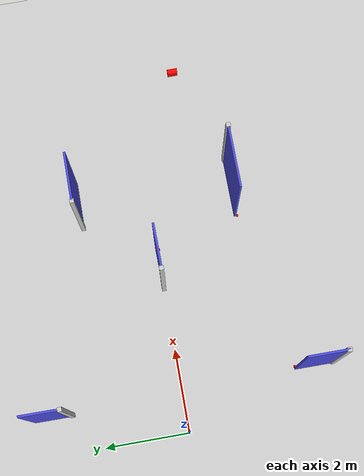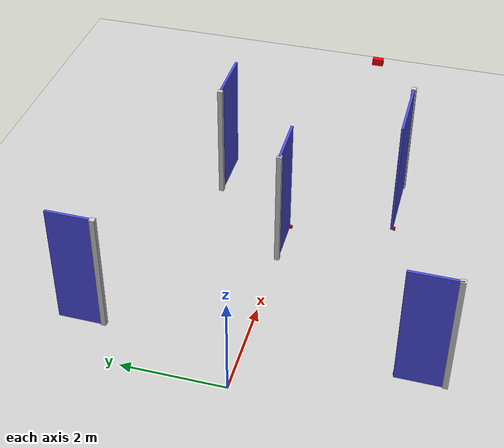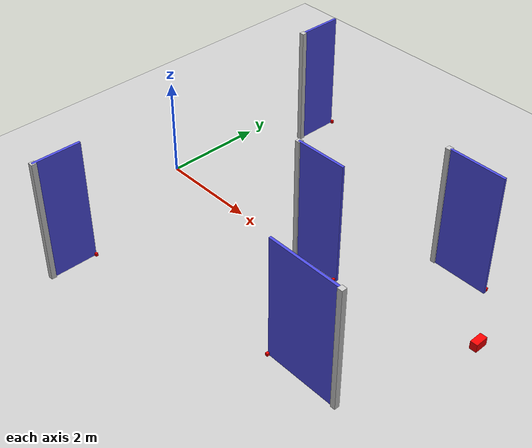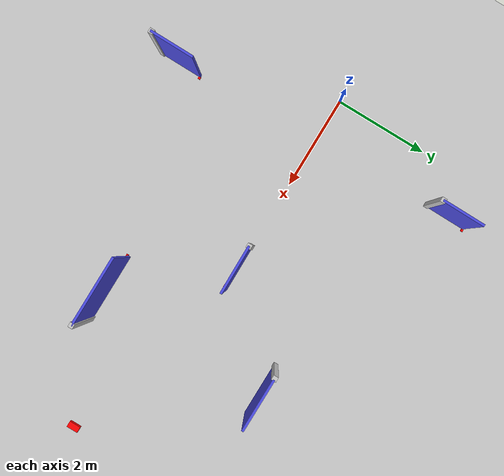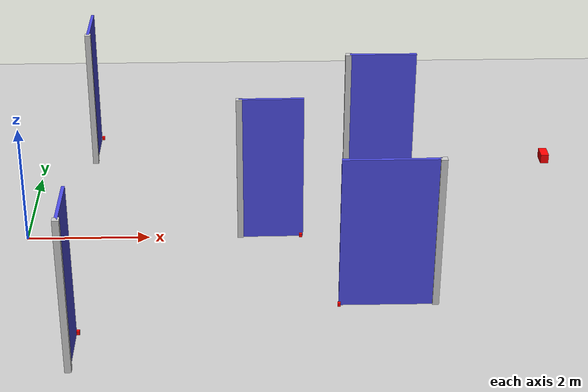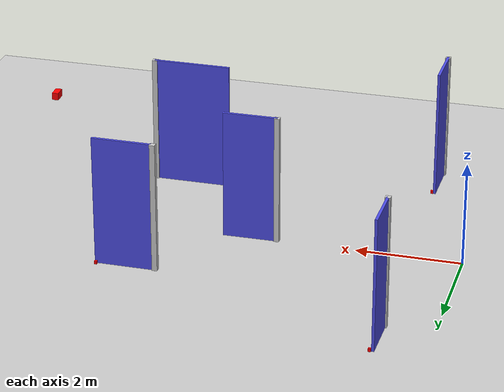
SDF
<sdf version="1.7">
 <world name="default">
  <model name="ground_plane">
   <static>1</static>
   <link name="link">
    <collision name="collision">
     <geometry><plane><normal>0 0 1</normal><size>100 100</size></plane></geometry>
     <surface><friction><ode><mu>100</mu><mu2>50</mu2></ode></friction></surface>
    </collision>
    <visual name="visual">
     <cast_shadows>0</cast_shadows>
     <geometry><plane><normal>0 0 1</normal><size>100 100</size></plane></geometry>
     <material>
      <script><uri>file://media/materials/scripts/gazebo.material</uri><name>Gazebo/Grey</name></script>
     </material>
    </visual>
   </link>
  </model>
  <model name="Lidar_2">
   <link name="link_1">
    <inertial>
     <mass>0.00014111</mass>
     <inertia><ixx>7e-08</ixx><ixy>0</ixy><ixz>0</ixz><iyy>7e-08</iyy><iyz>0</iyz><izz>6e-08</izz></inertia>
    </inertial>
    <visual name="visual">
     <geometry><box><size>0.048286 0.048861 0.059852</size></box></geometry>
     <material>
      <lighting>1</lighting>
      <script><uri>file://media/materials/scripts/gazebo.material</uri><name>Gazebo/Grey</name></script>
      <shader type="pixel"><normal_map>__default__</normal_map></shader>
      <ambient>1 0 0 1</ambient>
      <diffuse>0.7 0.7 0.7 1</diffuse>
      <specular>0.01 0.01 0.01 1</specular>
      <emissive>0 0 0 1</emissive>
     </material>
    </visual>
    <collision name="collision">
     <geometry><box><size>0.048286 0.048861 0.059852</size></box></geometry>
     <surface>
      <friction>
       <ode><mu>1</mu><mu2>1</mu2><fdir1>0 0 0</fdir1><slip1>0</slip1><slip2>0</slip2></ode>
       <torsional>
        <coefficient>1</coefficient>
        <patch_radius>0</patch_radius>
        <surface_radius>0</surface_radius>
        <use_patch_radius>1</use_patch_radius>
        <ode><slip>0</slip></ode>
       </torsional>
      </friction>
      <bounce><restitution_coefficient>0</restitution_coefficient><threshold>1e+06</threshold></bounce>
      <contact>
       <collide_without_contact>0</collide_without_contact>
       <collide_without_contact_bitmask>1</collide_without_contact_bitmask>
       <collide_bitmask>1</collide_bitmask>
       <ode>
        <soft_cfm>0</soft_cfm>
        <soft_erp>0.2</soft_erp>
        <kp>1e+13</kp>
        <kd>1</kd>
        <max_vel>0.01</max_vel>
        <min_depth>0</min_depth>
       </ode>
       <bullet>
        <split_impulse>1</split_impulse>
        <split_impulse_penetration_threshold>-0.01</split_impulse_penetration_threshold>
        <soft_cfm>0</soft_cfm>
        <soft_erp>0.2</soft_erp>
        <kp>1e+13</kp>
        <kd>1</kd>
       </bullet>
      </contact>
     </surface>
    </collision>
   </link>
   <static>0</static>
   <pose>1.09766 -2.73405 0.029921 -8.9e-05 0.00011 -1.56426</pose>
  </model>
  <model name="Lidar_3">
   <link name="link_1">
    <inertial>
     <mass>0.00014111</mass>
     <inertia><ixx>7e-08</ixx><ixy>0</ixy><ixz>0</ixz><iyy>7e-08</iyy><iyz>0</iyz><izz>6e-08</izz></inertia>
    </inertial>
    <visual name="visual">
     <geometry><box><size>0.048286 0.048861 0.059852</size></box></geometry>
     <material>
      <lighting>1</lighting>
      <script><uri>file://media/materials/scripts/gazebo.material</uri><name>Gazebo/Grey</name></script>
      <shader type="pixel"><normal_map>__default__</normal_map></shader>
      <ambient>1 0 0 1</ambient>
      <diffuse>0.7 0.7 0.7 1</diffuse>
      <specular>0.01 0.01 0.01 1</specular>
      <emissive>0 0 0 1</emissive>
     </material>
    </visual>
    <collision name="collision">
     <geometry><box><size>0.048286 0.048861 0.059852</size></box></geometry>
     <surface>
      <friction>
       <ode><mu>1</mu><mu2>1</mu2><fdir1>0 0 0</fdir1><slip1>0</slip1><slip2>0</slip2></ode>
       <torsional>
        <coefficient>1</coefficient>
        <patch_radius>0</patch_radius>
        <surface_radius>0</surface_radius>
        <use_patch_radius>1</use_patch_radius>
        <ode><slip>0</slip></ode>
       </torsional>
      </friction>
      <bounce><restitution_coefficient>0</restitution_coefficient><threshold>1e+06</threshold></bounce>
      <contact>
       <collide_without_contact>0</collide_without_contact>
       <collide_without_contact_bitmask>1</collide_without_contact_bitmask>
       <collide_bitmask>1</collide_bitmask>
       <ode>
        <soft_cfm>0</soft_cfm>
        <soft_erp>0.2</soft_erp>
        <kp>1e+13</kp>
        <kd>1</kd>
        <max_vel>0.01</max_vel>
        <min_depth>0</min_depth>
       </ode>
       <bullet>
        <split_impulse>1</split_impulse>
        <split_impulse_penetration_threshold>-0.01</split_impulse_penetration_threshold>
        <soft_cfm>0</soft_cfm>
        <soft_erp>0.2</soft_erp>
        <kp>1e+13</kp>
        <kd>1</kd>
       </bullet>
      </contact>
     </surface>
    </collision>
   </link>
   <static>0</static>
   <pose>4.48921 -0.039747 0.029921 -8.9e-05 -0.00011 3.12329</pose>
  </model>
  <model name="Lidar_4">
   <link name="link_1">
    <inertial>
     <mass>0.00014111</mass>
     <inertia><ixx>7e-08</ixx><ixy>0</ixy><ixz>0</ixz><iyy>7e-08</iyy><iyz>0</iyz><izz>6e-08</izz></inertia>
    </inertial>
    <visual name="visual">
     <geometry><box><size>0.048286 0.048861 0.059852</size></box></geometry>
     <material>
      <lighting>1</lighting>
      <script><uri>file://media/materials/scripts/gazebo.material</uri><name>Gazebo/Grey</name></script>
      <shader type="pixel"><normal_map>__default__</normal_map></shader>
      <ambient>1 0 0 1</ambient>
      <diffuse>0.7 0.7 0.7 1</diffuse>
      <specular>0.01 0.01 0.01 1</specular>
      <emissive>0 0 0 1</emissive>
     </material>
    </visual>
    <collision name="collision">
     <geometry><box><size>0.048286 0.048861 0.059852</size></box></geometry>
     <surface>
      <friction>
       <ode><mu>1</mu><mu2>1</mu2><fdir1>0 0 0</fdir1><slip1>0</slip1><slip2>0</slip2></ode>
       <torsional>
        <coefficient>1</coefficient>
        <patch_radius>0</patch_radius>
        <surface_radius>0</surface_radius>
        <use_patch_radius>1</use_patch_radius>
        <ode><slip>0</slip></ode>
       </torsional>
      </friction>
      <bounce><restitution_coefficient>0</restitution_coefficient><threshold>1e+06</threshold></bounce>
      <contact>
       <collide_without_contact>0</collide_without_contact>
       <collide_without_contact_bitmask>1</collide_without_contact_bitmask>
       <collide_bitmask>1</collide_bitmask>
       <ode>
        <soft_cfm>0</soft_cfm>
        <soft_erp>0.2</soft_erp>
        <kp>1e+13</kp>
        <kd>1</kd>
        <max_vel>0.01</max_vel>
        <min_depth>0</min_depth>
       </ode>
       <bullet>
        <split_impulse>1</split_impulse>
        <split_impulse_penetration_threshold>-0.01</split_impulse_penetration_threshold>
        <soft_cfm>0</soft_cfm>
        <soft_erp>0.2</soft_erp>
        <kp>1e+13</kp>
        <kd>1</kd>
       </bullet>
      </contact>
     </surface>
    </collision>
   </link>
   <static>0</static>
   <pose>6.45492 1.75537 0.029924 0.000139 5.8e-05 3.13776</pose>
  </model>
  <model name="Lidar_5">
   <link name="link_1">
    <inertial>
     <mass>0.00014111</mass>
     <inertia><ixx>7e-08</ixx><ixy>0</ixy><ixz>0</ixz><iyy>7e-08</iyy><iyz>0</iyz><izz>6e-08</izz></inertia>
    </inertial>
    <visual name="visual">
     <geometry><box><size>0.048286 0.048861 0.059852</size></box></geometry>
     <material>
      <lighting>1</lighting>
      <script><uri>file://media/materials/scripts/gazebo.material</uri><name>Gazebo/Grey</name></script>
      <shader type="pixel"><normal_map>__default__</normal_map></shader>
      <ambient>1 0 0 1</ambient>
      <diffuse>0.7 0.7 0.7 1</diffuse>
      <specular>0.01 0.01 0.01 1</specular>
      <emissive>0 0 0 1</emissive>
     </material>
    </visual>
    <collision name="collision">
     <geometry><box><size>0.048286 0.048861 0.059852</size></box></geometry>
     <surface>
      <friction>
       <ode><mu>1</mu><mu2>1</mu2><fdir1>0 0 0</fdir1><slip1>0</slip1><slip2>0</slip2></ode>
       <torsional>
        <coefficient>1</coefficient>
        <patch_radius>0</patch_radius>
        <surface_radius>0</surface_radius>
        <use_patch_radius>1</use_patch_radius>
        <ode><slip>0</slip></ode>
       </torsional>
      </friction>
      <bounce><restitution_coefficient>0</restitution_coefficient><threshold>1e+06</threshold></bounce>
      <contact>
       <collide_without_contact>0</collide_without_contact>
       <collide_without_contact_bitmask>1</collide_without_contact_bitmask>
       <collide_bitmask>1</collide_bitmask>
       <ode>
        <soft_cfm>0</soft_cfm>
        <soft_erp>0.2</soft_erp>
        <kp>1e+13</kp>
        <kd>1</kd>
        <max_vel>0.01</max_vel>
        <min_depth>0</min_depth>
       </ode>
       <bullet>
        <split_impulse>1</split_impulse>
        <split_impulse_penetration_threshold>-0.01</split_impulse_penetration_threshold>
        <soft_cfm>0</soft_cfm>
        <soft_erp>0.2</soft_erp>
        <kp>1e+13</kp>
        <kd>1</kd>
       </bullet>
      </contact>
     </surface>
    </collision>
   </link>
   <static>0</static>
   <pose>0.955702 3.52749 0.029924 -6.1e-05 0.000135 -1.57626</pose>
  </model>
  <model name="Lidar_7">
   <link name="link_1">
    <inertial>
     <mass>0.00014111</mass>
     <inertia><ixx>7e-08</ixx><ixy>0</ixy><ixz>0</ixz><iyy>7e-08</iyy><iyz>0</iyz><izz>6e-08</izz></inertia>
    </inertial>
    <visual name="visual">
     <geometry><box><size>0.048286 0.048861 0.059852</size></box></geometry>
     <material>
      <lighting>1</lighting>
      <script><uri>file://media/materials/scripts/gazebo.material</uri><name>Gazebo/Grey</name></script>
      <shader type="pixel"><normal_map>__default__</normal_map></shader>
      <ambient>1 0 0 1</ambient>
      <diffuse>0.7 0.7 0.7 1</diffuse>
      <specular>0.01 0.01 0.01 1</specular>
      <emissive>0 0 0 1</emissive>
     </material>
    </visual>
    <collision name="collision">
     <geometry><box><size>0.048286 0.048861 0.059852</size></box></geometry>
     <surface>
      <friction>
       <ode><mu>1</mu><mu2>1</mu2><fdir1>0 0 0</fdir1><slip1>0</slip1><slip2>0</slip2></ode>
       <torsional>
        <coefficient>1</coefficient>
        <patch_radius>0</patch_radius>
        <surface_radius>0</surface_radius>
        <use_patch_radius>1</use_patch_radius>
        <ode><slip>0</slip></ode>
       </torsional>
      </friction>
      <bounce><restitution_coefficient>0</restitution_coefficient><threshold>1e+06</threshold></bounce>
      <contact>
       <collide_without_contact>0</collide_without_contact>
       <collide_without_contact_bitmask>1</collide_without_contact_bitmask>
       <collide_bitmask>1</collide_bitmask>
       <ode>
        <soft_cfm>0</soft_cfm>
        <soft_erp>0.2</soft_erp>
        <kp>1e+13</kp>
        <kd>1</kd>
        <max_vel>0.01</max_vel>
        <min_depth>0</min_depth>
       </ode>
       <bullet>
        <split_impulse>1</split_impulse>
        <split_impulse_penetration_threshold>-0.01</split_impulse_penetration_threshold>
        <soft_cfm>0</soft_cfm>
        <soft_erp>0.2</soft_erp>
        <kp>1e+13</kp>
        <kd>1</kd>
       </bullet>
      </contact>
     </surface>
    </collision>
   </link>
   <static>0</static>
   <pose>4.99611 -2.08544 0.029924 6.1e-05 0.000135 -0.001713</pose>
  </model>
  <model name="Camera_1">
   <link name="link_1">
    <inertial>
     <mass>0.00014152</mass>
     <inertia><ixx>8.3e-07</ixx><ixy>0</ixy><ixz>0</ixz><iyy>4e-07</iyy><iyz>0</iyz><izz>7.7e-07</izz></inertia>
    </inertial>
    <gravity>0</gravity>
    <visual name="visual">
     <geometry><box><size>0.119276 0.225925 0.14044</size></box></geometry>
     <material>
      <lighting>1</lighting>
      <script><uri>file://media/materials/scripts/gazebo.material</uri><name>Gazebo/Grey</name></script>
      <shader type="pixel"><normal_map>__default__</normal_map></shader>
      <ambient>1 0 0 1</ambient>
      <diffuse>0.7 0.7 0.7 1</diffuse>
      <specular>0.01 0.01 0.01 1</specular>
      <emissive>0 0 0 1</emissive>
     </material>
    </visual>
    <collision name="collision">
     <geometry><box><size>0.119276 0.225925 0.14044</size></box></geometry>
     <surface>
      <friction>
       <ode><mu>1</mu><mu2>1</mu2><fdir1>0 0 0</fdir1><slip1>0</slip1><slip2>0</slip2></ode>
       <torsional>
        <coefficient>1</coefficient>
        <patch_radius>0</patch_radius>
        <surface_radius>0</surface_radius>
        <use_patch_radius>1</use_patch_radius>
        <ode><slip>0</slip></ode>
       </torsional>
      </friction>
      <bounce><restitution_coefficient>0</restitution_coefficient><threshold>1e+06</threshold></bounce>
      <contact>
       <collide_without_contact>0</collide_without_contact>
       <collide_without_contact_bitmask>1</collide_without_contact_bitmask>
       <collide_bitmask>1</collide_bitmask>
       <ode>
        <soft_cfm>0</soft_cfm>
        <soft_erp>0.2</soft_erp>
        <kp>1e+13</kp>
        <kd>1</kd>
        <max_vel>0.01</max_vel>
        <min_depth>0</min_depth>
       </ode>
       <bullet>
        <split_impulse>1</split_impulse>
        <split_impulse_penetration_threshold>-0.01</split_impulse_penetration_threshold>
        <soft_cfm>0</soft_cfm>
        <soft_erp>0.2</soft_erp>
        <kp>1e+13</kp>
        <kd>1</kd>
       </bullet>
      </contact>
     </surface>
    </collision>
    <sensor name="camera_sensor1" type="camera">
     <update_rate>30</update_rate>
     <camera>
      <horizontal_fov>2.5</horizontal_fov>
      <image><width>800</width><height>600</height><format>R8G8B8</format></image>
      <clip><near>0.1</near><far>100</far></clip>
      <distortion><k1>-0.3</k1><k2>0.1</k2><p1>0</p1><p2>0</p2></distortion>
     </camera>
     <plugin name="camera_plugin" filename="libcamera_plugin.so"/>
    </sensor>
   </link>
   <static>0</static>
   <pose>8.13503 -1.04662 2 0 0 -3.14</pose>
  </model>
  <model name="door_4">
   <link name="door_frame">
    <pose>0.25 -0 1.25 0 -0 0</pose>
    <kinematic>1</kinematic>
    <inertial>
     <inertia><ixx>1</ixx><ixy>0</ixy><ixz>0</ixz><iyy>1</iyy><iyz>0</iyz><izz>1</izz></inertia>
     <mass>1</mass>
    </inertial>
    <visual name="frame_visual">
     <geometry><box><size>0.1 0.1 2.5</size></box></geometry>
     <material>
      <ambient>0.7 0.7 0.7 1</ambient>
      <diffuse>0.8 0.8 0.8 1</diffuse>
      <shader type="pixel"/>
      <script><name>ModelPreview_1::door_frame::frame_visual_MATERIAL_</name><uri>__default__</uri></script>
     </material>
    </visual>
    <collision name="frame_collision">
     <geometry><box><size>0.1 0.1 2.5</size></box></geometry>
     <surface>
      <friction>
       <ode><mu>1</mu><mu2>1</mu2><fdir1>0 0 0</fdir1><slip1>0</slip1><slip2>0</slip2></ode>
       <torsional>
        <coefficient>1</coefficient>
        <patch_radius>0</patch_radius>
        <surface_radius>0</surface_radius>
        <use_patch_radius>1</use_patch_radius>
        <ode><slip>0</slip></ode>
       </torsional>
      </friction>
      <bounce><restitution_coefficient>0</restitution_coefficient><threshold>1e+06</threshold></bounce>
      <contact>
       <collide_without_contact>0</collide_without_contact>
       <collide_without_contact_bitmask>1</collide_without_contact_bitmask>
       <collide_bitmask>1</collide_bitmask>
       <ode>
        <soft_cfm>0</soft_cfm>
        <soft_erp>0.2</soft_erp>
        <kp>1e+13</kp>
        <kd>1</kd>
        <max_vel>0.01</max_vel>
        <min_depth>0</min_depth>
       </ode>
       <bullet>
        <split_impulse>1</split_impulse>
        <split_impulse_penetration_threshold>-0.01</split_impulse_penetration_threshold>
        <soft_cfm>0</soft_cfm>
        <soft_erp>0.2</soft_erp>
        <kp>1e+13</kp>
        <kd>1</kd>
       </bullet>
      </contact>
     </surface>
    </collision>
   </link>
   <link name="door">
    <kinematic>1</kinematic>
    <pose>-0.195697 -0 1.25 0 -0 0</pose>
    <inertial>
     <inertia>
      <ixx>0.971443</ixx>
      <ixy>0</ixy>
      <ixz>0</ixz>
      <iyy>1.10607</iyy>
      <iyz>0</iyz>
      <izz>0.135403</izz>
     </inertia>
     <mass>1.86443</mass>
    </inertial>
    <visual name="door_visual">
     <geometry><box><size>0.932199 0.05 2.5</size></box></geometry>
     <material>
      <ambient>0.2 0.2 0.8 1</ambient>
      <diffuse>0.3 0.3 0.9 1</diffuse>
      <shader type="pixel"/>
      <script><name>ModelPreview_1::door::door_visual_MATERIAL_</name><uri>__default__</uri></script>
     </material>
    </visual>
    <collision name="door_collision">
     <geometry><box><size>0.932199 0.05 2.5</size></box></geometry>
     <surface>
      <friction>
       <ode><mu>1</mu><mu2>1</mu2><fdir1>0 0 0</fdir1><slip1>0</slip1><slip2>0</slip2></ode>
       <torsional>
        <coefficient>1</coefficient>
        <patch_radius>0</patch_radius>
        <surface_radius>0</surface_radius>
        <use_patch_radius>1</use_patch_radius>
        <ode><slip>0</slip></ode>
       </torsional>
      </friction>
      <bounce><restitution_coefficient>0</restitution_coefficient><threshold>1e+06</threshold></bounce>
      <contact>
       <collide_without_contact>0</collide_without_contact>
       <collide_without_contact_bitmask>1</collide_without_contact_bitmask>
       <collide_bitmask>1</collide_bitmask>
       <ode>
        <soft_cfm>0</soft_cfm>
        <soft_erp>0.2</soft_erp>
        <kp>1e+13</kp>
        <kd>1</kd>
        <max_vel>0.01</max_vel>
        <min_depth>0</min_depth>
       </ode>
       <bullet>
        <split_impulse>1</split_impulse>
        <split_impulse_penetration_threshold>-0.01</split_impulse_penetration_threshold>
        <soft_cfm>0</soft_cfm>
        <soft_erp>0.2</soft_erp>
        <kp>1e+13</kp>
        <kd>1</kd>
       </bullet>
      </contact>
     </surface>
    </collision>
   </link>
   <joint name="door_joint" type="prismatic">
    <parent>door_frame</parent>
    <child>door</child>
    <axis>
     <xyz>1 0 0</xyz>
     <limit><lower>0</lower><upper>1</upper><effort>-1</effort><velocity>-1</velocity></limit>
     <dynamics>
      <spring_reference>0</spring_reference>
      <spring_stiffness>0</spring_stiffness>
      <damping>0</damping>
      <friction>0</friction>
     </dynamics>
    </axis>
    <physics>
     <ode><limit><cfm>0</cfm><erp>0.2</erp></limit><suspension><cfm>0</cfm><erp>0.2</erp></suspension></ode>
    </physics>
   </joint>
   <static>0</static>
   <plugin name="door_control_plugin" filename="libdoor_control_plugin.so">
    <door_joint>door_joint</door_joint>
    <speed>1.0</speed>
    <open_target>1.0</open_target>
    <close_target>0.0</close_target>
   </plugin>
   <pose>1.04541 -3.38243 0 0 0 -1.57622</pose>
  </model>
  <model name="door_5">
   <link name="door_frame">
    <pose>0.25 0 1.25 0 -0 0</pose>
    <kinematic>1</kinematic>
    <inertial>
     <inertia><ixx>1</ixx><ixy>0</ixy><ixz>0</ixz><iyy>1</iyy><iyz>0</iyz><izz>1</izz></inertia>
     <mass>1</mass>
    </inertial>
    <visual name="frame_visual">
     <geometry><box><size>0.1 0.1 2.5</size></box></geometry>
     <material>
      <ambient>0.7 0.7 0.7 1</ambient>
      <diffuse>0.8 0.8 0.8 1</diffuse>
      <shader type="pixel"/>
      <script><name>ModelPreview_1::door_frame::frame_visual_MATERIAL_</name><uri>__default__</uri></script>
     </material>
    </visual>
    <collision name="frame_collision">
     <geometry><box><size>0.1 0.1 2.5</size></box></geometry>
     <surface>
      <friction>
       <ode><mu>1</mu><mu2>1</mu2><fdir1>0 0 0</fdir1><slip1>0</slip1><slip2>0</slip2></ode>
       <torsional>
        <coefficient>1</coefficient>
        <patch_radius>0</patch_radius>
        <surface_radius>0</surface_radius>
        <use_patch_radius>1</use_patch_radius>
        <ode><slip>0</slip></ode>
       </torsional>
      </friction>
      <bounce><restitution_coefficient>0</restitution_coefficient><threshold>1e+06</threshold></bounce>
      <contact>
       <collide_without_contact>0</collide_without_contact>
       <collide_without_contact_bitmask>1</collide_without_contact_bitmask>
       <collide_bitmask>1</collide_bitmask>
       <ode>
        <soft_cfm>0</soft_cfm>
        <soft_erp>0.2</soft_erp>
        <kp>1e+13</kp>
        <kd>1</kd>
        <max_vel>0.01</max_vel>
        <min_depth>0</min_depth>
       </ode>
       <bullet>
        <split_impulse>1</split_impulse>
        <split_impulse_penetration_threshold>-0.01</split_impulse_penetration_threshold>
        <soft_cfm>0</soft_cfm>
        <soft_erp>0.2</soft_erp>
        <kp>1e+13</kp>
        <kd>1</kd>
       </bullet>
      </contact>
     </surface>
    </collision>
   </link>
   <link name="door">
    <kinematic>1</kinematic>
    <pose>-0.486434 0 1.25 0 -0 0</pose>
    <inertial>
     <inertia><ixx>1.55156</ixx><ixy>0</ixy><ixz>0</ixz><iyy>2.10104</iyy><iyz>0</iyz><izz>0.550719</izz></inertia>
     <mass>2.9778</mass>
    </inertial>
    <visual name="door_visual">
     <geometry><box><size>1.48889 0.05 2.5</size></box></geometry>
     <material>
      <ambient>0.2 0.2 0.8 1</ambient>
      <diffuse>0.3 0.3 0.9 1</diffuse>
      <shader type="pixel"/>
      <script><name>ModelPreview_1::door::door_visual_MATERIAL_</name><uri>__default__</uri></script>
     </material>
    </visual>
    <collision name="door_collision">
     <geometry><box><size>1.48889 0.05 2.5</size></box></geometry>
     <surface>
      <friction>
       <ode><mu>1</mu><mu2>1</mu2><fdir1>0 0 0</fdir1><slip1>0</slip1><slip2>0</slip2></ode>
       <torsional>
        <coefficient>1</coefficient>
        <patch_radius>0</patch_radius>
        <surface_radius>0</surface_radius>
        <use_patch_radius>1</use_patch_radius>
        <ode><slip>0</slip></ode>
       </torsional>
      </friction>
      <bounce><restitution_coefficient>0</restitution_coefficient><threshold>1e+06</threshold></bounce>
      <contact>
       <collide_without_contact>0</collide_without_contact>
       <collide_without_contact_bitmask>1</collide_without_contact_bitmask>
       <collide_bitmask>1</collide_bitmask>
       <ode>
        <soft_cfm>0</soft_cfm>
        <soft_erp>0.2</soft_erp>
        <kp>1e+13</kp>
        <kd>1</kd>
        <max_vel>0.01</max_vel>
        <min_depth>0</min_depth>
       </ode>
       <bullet>
        <split_impulse>1</split_impulse>
        <split_impulse_penetration_threshold>-0.01</split_impulse_penetration_threshold>
        <soft_cfm>0</soft_cfm>
        <soft_erp>0.2</soft_erp>
        <kp>1e+13</kp>
        <kd>1</kd>
       </bullet>
      </contact>
     </surface>
    </collision>
   </link>
   <joint name="door_joint" type="prismatic">
    <parent>door_frame</parent>
    <child>door</child>
    <axis>
     <xyz>1 0 0</xyz>
     <limit><lower>0</lower><upper>2</upper><effort>-1</effort><velocity>-1</velocity></limit>
     <dynamics>
      <spring_reference>0</spring_reference>
      <spring_stiffness>0</spring_stiffness>
      <damping>0</damping>
      <friction>0</friction>
     </dynamics>
    </axis>
    <physics>
     <ode><limit><cfm>0</cfm><erp>0.2</erp></limit><suspension><cfm>0</cfm><erp>0.2</erp></suspension></ode>
    </physics>
   </joint>
   <static>0</static>
   <plugin name="door_control_plugin" filename="libdoor_control_plugin.so">
    <door_joint>door_joint</door_joint>
    <speed>1.0</speed>
    <open_target>1.5</open_target>
    <close_target>0.0</close_target>
   </plugin>
   <pose>6.22032 -2.03543 0 0 -0 0</pose>
  </model>
  <model name="door_6">
   <link name="door_frame">
    <pose>0.25 0 1.25 0 -0 0</pose>
    <kinematic>1</kinematic>
    <inertial>
     <inertia><ixx>1</ixx><ixy>0</ixy><ixz>0</ixz><iyy>1</iyy><iyz>0</iyz><izz>1</izz></inertia>
     <mass>1</mass>
    </inertial>
    <visual name="frame_visual">
     <geometry><box><size>0.1 0.1 2.5</size></box></geometry>
     <material>
      <ambient>0.7 0.7 0.7 1</ambient>
      <diffuse>0.8 0.8 0.8 1</diffuse>
      <shader type="pixel"/>
      <script><name>ModelPreview_1::door_frame::frame_visual_MATERIAL_</name><uri>__default__</uri></script>
     </material>
    </visual>
    <collision name="frame_collision">
     <geometry><box><size>0.1 0.1 2.5</size></box></geometry>
     <surface>
      <friction>
       <ode><mu>1</mu><mu2>1</mu2><fdir1>0 0 0</fdir1><slip1>0</slip1><slip2>0</slip2></ode>
       <torsional>
        <coefficient>1</coefficient>
        <patch_radius>0</patch_radius>
        <surface_radius>0</surface_radius>
        <use_patch_radius>1</use_patch_radius>
        <ode><slip>0</slip></ode>
       </torsional>
      </friction>
      <bounce><restitution_coefficient>0</restitution_coefficient><threshold>1e+06</threshold></bounce>
      <contact>
       <collide_without_contact>0</collide_without_contact>
       <collide_without_contact_bitmask>1</collide_without_contact_bitmask>
       <collide_bitmask>1</collide_bitmask>
       <ode>
        <soft_cfm>0</soft_cfm>
        <soft_erp>0.2</soft_erp>
        <kp>1e+13</kp>
        <kd>1</kd>
        <max_vel>0.01</max_vel>
        <min_depth>0</min_depth>
       </ode>
       <bullet>
        <split_impulse>1</split_impulse>
        <split_impulse_penetration_threshold>-0.01</split_impulse_penetration_threshold>
        <soft_cfm>0</soft_cfm>
        <soft_erp>0.2</soft_erp>
        <kp>1e+13</kp>
        <kd>1</kd>
       </bullet>
      </contact>
     </surface>
    </collision>
   </link>
   <link name="door">
    <kinematic>1</kinematic>
    <pose>-0.259339 0 1.25 0 -0 0</pose>
    <inertial>
     <inertia><ixx>1.07451</ixx><ixy>0</ixy><ixz>0</ixz><iyy>1.25679</iyy><iyz>0</iyz><izz>0.18314</izz></inertia>
     <mass>2.06224</mass>
    </inertial>
    <visual name="door_visual">
     <geometry><box><size>1.0311 0.05 2.5</size></box></geometry>
     <material>
      <ambient>0.2 0.2 0.8 1</ambient>
      <diffuse>0.3 0.3 0.9 1</diffuse>
      <shader type="pixel"/>
      <script><name>ModelPreview_1::door::door_visual_MATERIAL_</name><uri>__default__</uri></script>
     </material>
    </visual>
    <collision name="door_collision">
     <geometry><box><size>1.0311 0.05 2.5</size></box></geometry>
     <surface>
      <friction>
       <ode><mu>1</mu><mu2>1</mu2><fdir1>0 0 0</fdir1><slip1>0</slip1><slip2>0</slip2></ode>
       <torsional>
        <coefficient>1</coefficient>
        <patch_radius>0</patch_radius>
        <surface_radius>0</surface_radius>
        <use_patch_radius>1</use_patch_radius>
        <ode><slip>0</slip></ode>
       </torsional>
      </friction>
      <bounce><restitution_coefficient>0</restitution_coefficient><threshold>1e+06</threshold></bounce>
      <contact>
       <collide_without_contact>0</collide_without_contact>
       <collide_without_contact_bitmask>1</collide_without_contact_bitmask>
       <collide_bitmask>1</collide_bitmask>
       <ode>
        <soft_cfm>0</soft_cfm>
        <soft_erp>0.2</soft_erp>
        <kp>1e+13</kp>
        <kd>1</kd>
        <max_vel>0.01</max_vel>
        <min_depth>0</min_depth>
       </ode>
       <bullet>
        <split_impulse>1</split_impulse>
        <split_impulse_penetration_threshold>-0.01</split_impulse_penetration_threshold>
        <soft_cfm>0</soft_cfm>
        <soft_erp>0.2</soft_erp>
        <kp>1e+13</kp>
        <kd>1</kd>
       </bullet>
      </contact>
     </surface>
    </collision>
   </link>
   <joint name="door_joint" type="prismatic">
    <parent>door_frame</parent>
    <child>door</child>
    <axis>
     <xyz>1 0 0</xyz>
     <limit><lower>0</lower><upper>1</upper><effort>-1</effort><velocity>-1</velocity></limit>
     <dynamics>
      <spring_reference>0</spring_reference>
      <spring_stiffness>0</spring_stiffness>
      <damping>0</damping>
      <friction>0</friction>
     </dynamics>
    </axis>
    <physics>
     <ode><limit><cfm>0</cfm><erp>0.2</erp></limit><suspension><cfm>0</cfm><erp>0.2</erp></suspension></ode>
    </physics>
   </joint>
   <static>0</static>
   <plugin name="door_control_plugin" filename="libdoor_control_plugin.so">
    <door_joint>door_joint</door_joint>
    <speed>1.</speed>
    <open_target>1</open_target>
    <close_target>0.0</close_target>
   </plugin>
   <pose>3.75281 0.00756 -0 0 0 -3.13224</pose>
  </model>
  <model name="door_8">
   <link name="door_frame">
    <pose>0.25 -0 1.25 0 -0 0</pose>
    <kinematic>1</kinematic>
    <inertial>
     <inertia><ixx>1</ixx><ixy>0</ixy><ixz>0</ixz><iyy>1</iyy><iyz>0</iyz><izz>1</izz></inertia>
     <mass>1</mass>
    </inertial>
    <visual name="frame_visual">
     <geometry><box><size>0.1 0.1 2.5</size></box></geometry>
     <material>
      <ambient>0.7 0.7 0.7 1</ambient>
      <diffuse>0.8 0.8 0.8 1</diffuse>
      <shader type="pixel"/>
      <script><name>ModelPreview_1::door_frame::frame_visual_MATERIAL_</name><uri>__default__</uri></script>
     </material>
    </visual>
    <collision name="frame_collision">
     <geometry><box><size>0.1 0.1 2.5</size></box></geometry>
     <surface>
      <friction>
       <ode><mu>1</mu><mu2>1</mu2><fdir1>0 0 0</fdir1><slip1>0</slip1><slip2>0</slip2></ode>
       <torsional>
        <coefficient>1</coefficient>
        <patch_radius>0</patch_radius>
        <surface_radius>0</surface_radius>
        <use_patch_radius>1</use_patch_radius>
        <ode><slip>0</slip></ode>
       </torsional>
      </friction>
      <bounce><restitution_coefficient>0</restitution_coefficient><threshold>1e+06</threshold></bounce>
      <contact>
       <collide_without_contact>0</collide_without_contact>
       <collide_without_contact_bitmask>1</collide_without_contact_bitmask>
       <collide_bitmask>1</collide_bitmask>
       <ode>
        <soft_cfm>0</soft_cfm>
        <soft_erp>0.2</soft_erp>
        <kp>1e+13</kp>
        <kd>1</kd>
        <max_vel>0.01</max_vel>
        <min_depth>0</min_depth>
       </ode>
       <bullet>
        <split_impulse>1</split_impulse>
        <split_impulse_penetration_threshold>-0.01</split_impulse_penetration_threshold>
        <soft_cfm>0</soft_cfm>
        <soft_erp>0.2</soft_erp>
        <kp>1e+13</kp>
        <kd>1</kd>
       </bullet>
      </contact>
     </surface>
    </collision>
   </link>
   <link name="door">
    <kinematic>1</kinematic>
    <pose>-0.336184 -0 1.25 0 -0 0</pose>
    <inertial>
     <inertia><ixx>1.16202</ixx><ixy>0</ixy><ixz>0</ixz><iyy>1.39265</iyy><iyz>0</iyz><izz>0.231556</izz></inertia>
     <mass>2.23019</mass>
    </inertial>
    <visual name="door_visual">
     <geometry><box><size>1.11509 0.05 2.5</size></box></geometry>
     <material>
      <ambient>0.2 0.2 0.8 1</ambient>
      <diffuse>0.3 0.3 0.9 1</diffuse>
      <shader type="pixel"/>
      <script><name>ModelPreview_1::door::door_visual_MATERIAL_</name><uri>__default__</uri></script>
     </material>
    </visual>
    <collision name="door_collision">
     <geometry><box><size>1.11509 0.05 2.5</size></box></geometry>
     <surface>
      <friction>
       <ode><mu>1</mu><mu2>1</mu2><fdir1>0 0 0</fdir1><slip1>0</slip1><slip2>0</slip2></ode>
       <torsional>
        <coefficient>1</coefficient>
        <patch_radius>0</patch_radius>
        <surface_radius>0</surface_radius>
        <use_patch_radius>1</use_patch_radius>
        <ode><slip>0</slip></ode>
       </torsional>
      </friction>
      <bounce><restitution_coefficient>0</restitution_coefficient><threshold>1e+06</threshold></bounce>
      <contact>
       <collide_without_contact>0</collide_without_contact>
       <collide_without_contact_bitmask>1</collide_without_contact_bitmask>
       <collide_bitmask>1</collide_bitmask>
       <ode>
        <soft_cfm>0</soft_cfm>
        <soft_erp>0.2</soft_erp>
        <kp>1e+13</kp>
        <kd>1</kd>
        <max_vel>0.01</max_vel>
        <min_depth>0</min_depth>
       </ode>
       <bullet>
        <split_impulse>1</split_impulse>
        <split_impulse_penetration_threshold>-0.01</split_impulse_penetration_threshold>
        <soft_cfm>0</soft_cfm>
        <soft_erp>0.2</soft_erp>
        <kp>1e+13</kp>
        <kd>1</kd>
       </bullet>
      </contact>
     </surface>
    </collision>
   </link>
   <joint name="door_joint" type="prismatic">
    <parent>door_frame</parent>
    <child>door</child>
    <axis>
     <xyz>1 0 0</xyz>
     <limit><lower>0</lower><upper>1</upper><effort>-1</effort><velocity>-1</velocity></limit>
     <dynamics>
      <spring_reference>0</spring_reference>
      <spring_stiffness>0</spring_stiffness>
      <damping>0</damping>
      <friction>0</friction>
     </dynamics>
    </axis>
    <physics>
     <ode><limit><cfm>0</cfm><erp>0.2</erp></limit><suspension><cfm>0</cfm><erp>0.2</erp></suspension></ode>
    </physics>
   </joint>
   <static>0</static>
   <plugin name="door_control_plugin" filename="libdoor_control_plugin.so">
    <door_joint>door_joint</door_joint>
    <speed>1.0</speed>
    <open_target>1.0</open_target>
    <close_target>0.0</close_target>
   </plugin>
   <pose>5.59079 1.69004 0 0 -0 3.13813</pose>
  </model>
  <model name="door_9">
   <link name="door_frame">
    <pose>0.25 -0 1.25 0 -0 0</pose>
    <kinematic>1</kinematic>
    <inertial>
     <inertia><ixx>1</ixx><ixy>0</ixy><ixz>0</ixz><iyy>1</iyy><iyz>0</iyz><izz>1</izz></inertia>
     <mass>1</mass>
    </inertial>
    <visual name="frame_visual">
     <geometry><box><size>0.1 0.1 2.5</size></box></geometry>
     <material>
      <ambient>0.7 0.7 0.7 1</ambient>
      <diffuse>0.8 0.8 0.8 1</diffuse>
      <shader type="pixel"/>
      <script><name>ModelPreview_1::door_frame::frame_visual_MATERIAL_</name><uri>__default__</uri></script>
     </material>
    </visual>
    <collision name="frame_collision">
     <geometry><box><size>0.1 0.1 2.5</size></box></geometry>
     <surface>
      <friction>
       <ode><mu>1</mu><mu2>1</mu2><fdir1>0 0 0</fdir1><slip1>0</slip1><slip2>0</slip2></ode>
       <torsional>
        <coefficient>1</coefficient>
        <patch_radius>0</patch_radius>
        <surface_radius>0</surface_radius>
        <use_patch_radius>1</use_patch_radius>
        <ode><slip>0</slip></ode>
       </torsional>
      </friction>
      <bounce><restitution_coefficient>0</restitution_coefficient><threshold>1e+06</threshold></bounce>
      <contact>
       <collide_without_contact>0</collide_without_contact>
       <collide_without_contact_bitmask>1</collide_without_contact_bitmask>
       <collide_bitmask>1</collide_bitmask>
       <ode>
        <soft_cfm>0</soft_cfm>
        <soft_erp>0.2</soft_erp>
        <kp>1e+13</kp>
        <kd>1</kd>
        <max_vel>0.01</max_vel>
        <min_depth>0</min_depth>
       </ode>
       <bullet>
        <split_impulse>1</split_impulse>
        <split_impulse_penetration_threshold>-0.01</split_impulse_penetration_threshold>
        <soft_cfm>0</soft_cfm>
        <soft_erp>0.2</soft_erp>
        <kp>1e+13</kp>
        <kd>1</kd>
       </bullet>
      </contact>
     </surface>
    </collision>
   </link>
   <link name="door">
    <kinematic>1</kinematic>
    <pose>-0.194394 0 1.25 0 -0 0</pose>
    <inertial>
     <inertia>
      <ixx>0.934843</ixx>
      <ixy>0</ixy>
      <ixz>0</ixz>
      <iyy>1.05479</iyy>
      <iyz>0</iyz>
      <izz>0.120699</izz>
     </inertia>
     <mass>1.79418</mass>
    </inertial>
    <visual name="door_visual">
     <geometry><box><size>0.897089 0.05 2.5</size></box></geometry>
     <material>
      <ambient>0.2 0.2 0.8 1</ambient>
      <diffuse>0.3 0.3 0.9 1</diffuse>
      <shader type="pixel"/>
      <script><name>ModelPreview_1::door::door_visual_MATERIAL_</name><uri>__default__</uri></script>
     </material>
    </visual>
    <collision name="door_collision">
     <geometry><box><size>0.897089 0.05 2.5</size></box></geometry>
     <surface>
      <friction>
       <ode><mu>1</mu><mu2>1</mu2><fdir1>0 0 0</fdir1><slip1>0</slip1><slip2>0</slip2></ode>
       <torsional>
        <coefficient>1</coefficient>
        <patch_radius>0</patch_radius>
        <surface_radius>0</surface_radius>
        <use_patch_radius>1</use_patch_radius>
        <ode><slip>0</slip></ode>
       </torsional>
      </friction>
      <bounce><restitution_coefficient>0</restitution_coefficient><threshold>1e+06</threshold></bounce>
      <contact>
       <collide_without_contact>0</collide_without_contact>
       <collide_without_contact_bitmask>1</collide_without_contact_bitmask>
       <collide_bitmask>1</collide_bitmask>
       <ode>
        <soft_cfm>0</soft_cfm>
        <soft_erp>0.2</soft_erp>
        <kp>1e+13</kp>
        <kd>1</kd>
        <max_vel>0.01</max_vel>
        <min_depth>0</min_depth>
       </ode>
       <bullet>
        <split_impulse>1</split_impulse>
        <split_impulse_penetration_threshold>-0.01</split_impulse_penetration_threshold>
        <soft_cfm>0</soft_cfm>
        <soft_erp>0.2</soft_erp>
        <kp>1e+13</kp>
        <kd>1</kd>
       </bullet>
      </contact>
     </surface>
    </collision>
   </link>
   <joint name="door_joint" type="prismatic">
    <parent>door_frame</parent>
    <child>door</child>
    <axis>
     <xyz>1 0 0</xyz>
     <limit><lower>0</lower><upper>1</upper><effort>-1</effort><velocity>-1</velocity></limit>
     <dynamics>
      <spring_reference>0</spring_reference>
      <spring_stiffness>0</spring_stiffness>
      <damping>0</damping>
      <friction>0</friction>
     </dynamics>
    </axis>
    <physics>
     <ode><limit><cfm>0</cfm><erp>0.2</erp></limit><suspension><cfm>0</cfm><erp>0.2</erp></suspension></ode>
    </physics>
   </joint>
   <static>0</static>
   <plugin name="door_control_plugin" filename="libdoor_control_plugin.so">
    <door_joint>door_joint</door_joint>
    <speed>1.0</speed>
    <open_target>1.0</open_target>
    <close_target>0.0</close_target>
   </plugin>
   <pose>0.895522 2.88667 0 0 0 -1.57961</pose>
  </model>
 </world>
</sdf>
